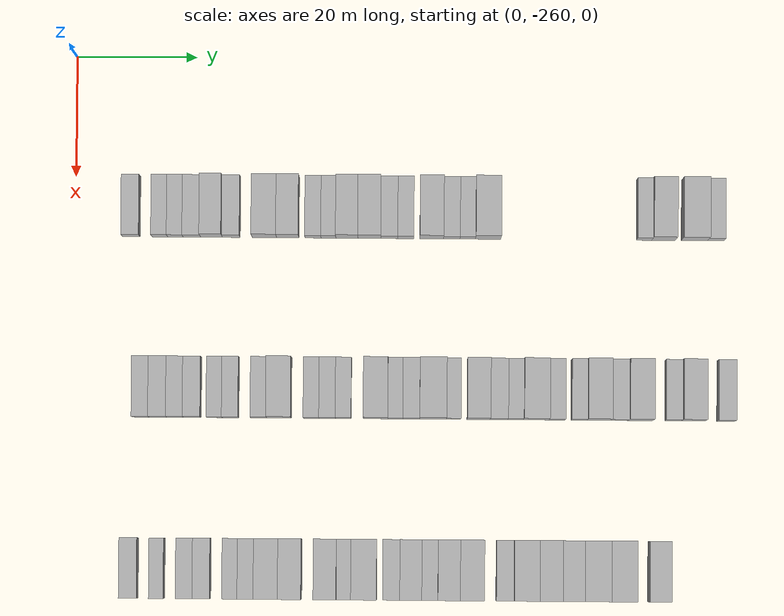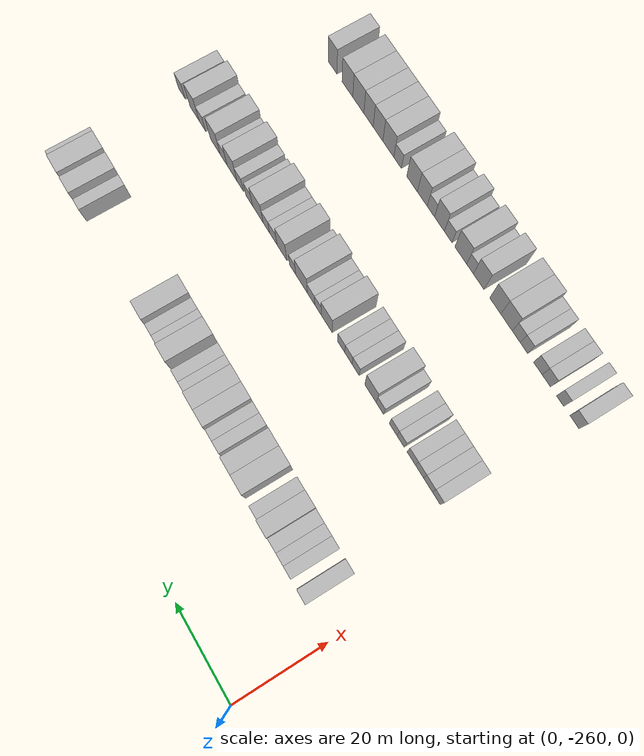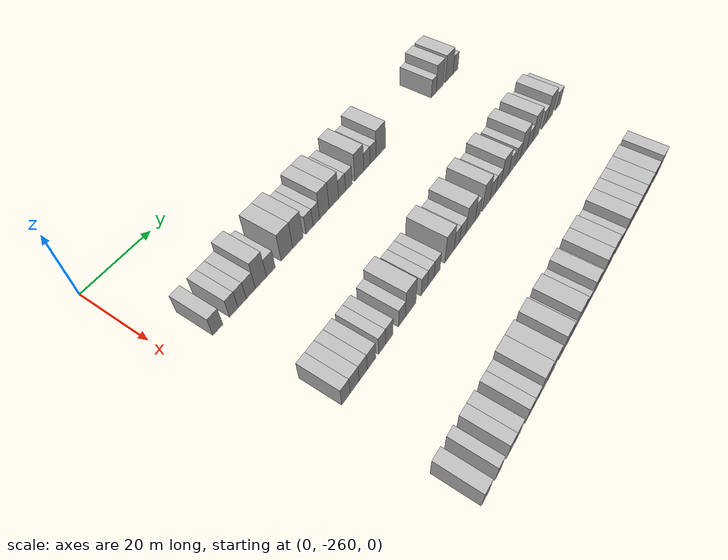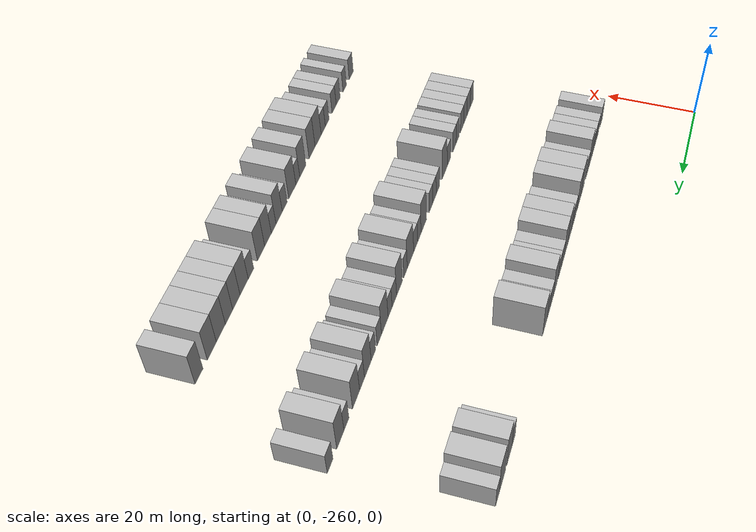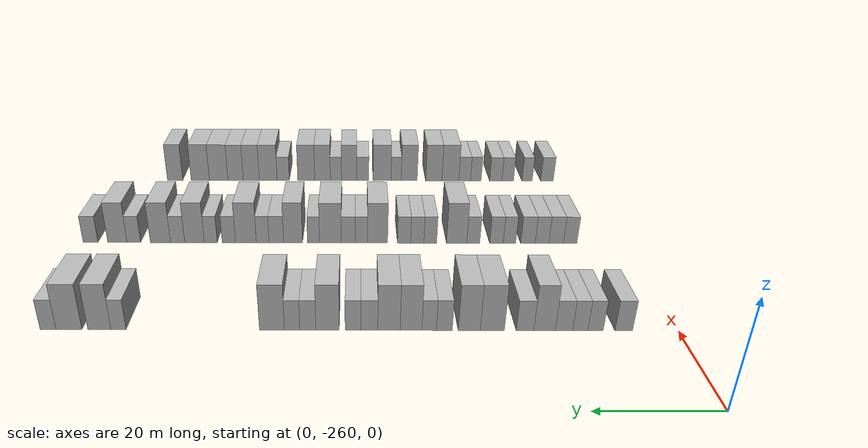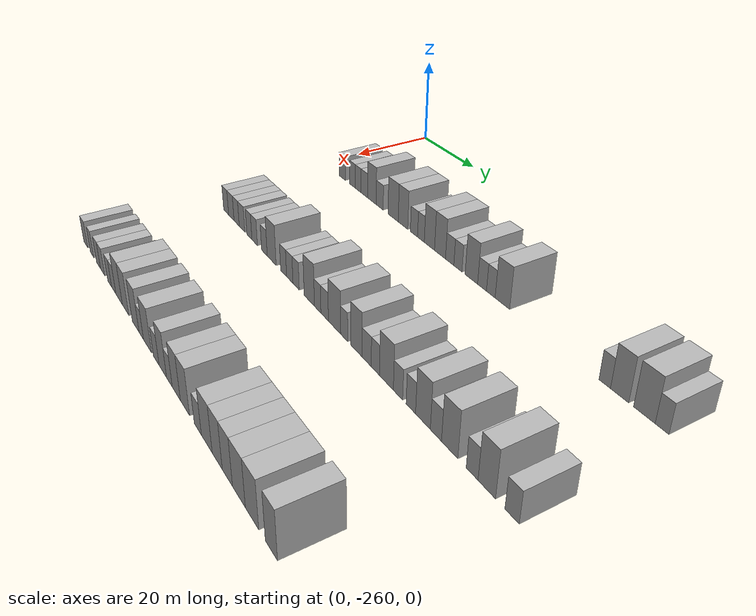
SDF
<sdf version="1.6">
 <world name="default">
  <model name="building_50">
   <static>1</static>
   <pose>25.0000 -250.7479 0 0.000000 0.000000 0.000000</pose>
   <link name="link">
    <pose>0 0 3.00 0 0 0</pose>
    <collision name="collision"><geometry><box><size>10.0000 2.9444 6.0000</size></box></geometry></collision>
    <visual name="visual">
     <cast_shadows>0</cast_shadows>
     <geometry><box><size>10.0000 2.9444 6.0000</size></box></geometry>
     <material>
      <script>
       <uri>model://HANNAS_wall/materials/scripts</uri>
       <uri>model://HANNAS_wall/materials/textures</uri>
       <name>vrc/HANNAS_wall</name>
      </script>
     </material>
    </visual>
   </link>
  </model>
  <model name="building_51">
   <static>1</static>
   <pose>25.0000 -245.9819 0 0.000000 0.000000 0.000000</pose>
   <link name="link">
    <pose>0 0 3.00 0 0 0</pose>
    <collision name="collision"><geometry><box><size>10.0000 2.5876 6.0000</size></box></geometry></collision>
    <visual name="visual">
     <cast_shadows>0</cast_shadows>
     <geometry><box><size>10.0000 2.5876 6.0000</size></box></geometry>
     <material>
      <script>
       <uri>model://HANNAS_wall/materials/scripts</uri>
       <uri>model://HANNAS_wall/materials/textures</uri>
       <name>vrc/HANNAS_wall</name>
      </script>
     </material>
    </visual>
   </link>
  </model>
  <model name="building_52">
   <static>1</static>
   <pose>25.0000 -243.4026 0 0.000000 0.000000 0.000000</pose>
   <link name="link">
    <pose>0 0 3.00 0 0 0</pose>
    <collision name="collision"><geometry><box><size>10.0000 2.5710 6.0000</size></box></geometry></collision>
    <visual name="visual">
     <cast_shadows>0</cast_shadows>
     <geometry><box><size>10.0000 2.5710 6.0000</size></box></geometry>
     <material>
      <script>
       <uri>model://HANNAS_wall/materials/scripts</uri>
       <uri>model://HANNAS_wall/materials/textures</uri>
       <name>vrc/HANNAS_wall</name>
      </script>
     </material>
    </visual>
   </link>
  </model>
  <model name="building_53">
   <static>1</static>
   <pose>25.0000 -240.6543 0 0.000000 0.000000 0.000000</pose>
   <link name="link">
    <pose>0 0 3.00 0 0 0</pose>
    <collision name="collision"><geometry><box><size>10.0000 2.9257 6.0000</size></box></geometry></collision>
    <visual name="visual">
     <cast_shadows>0</cast_shadows>
     <geometry><box><size>10.0000 2.9257 6.0000</size></box></geometry>
     <material>
      <script>
       <uri>model://HANNAS_wall/materials/scripts</uri>
       <uri>model://HANNAS_wall/materials/textures</uri>
       <name>vrc/HANNAS_wall</name>
      </script>
     </material>
    </visual>
   </link>
  </model>
  <model name="building_54">
   <static>1</static>
   <pose>25.0000 -237.3830 0 0.000000 0.000000 0.000000</pose>
   <link name="link">
    <pose>0 0 4.50 0 0 0</pose>
    <collision name="collision"><geometry><box><size>10.0000 3.6170 9.0000</size></box></geometry></collision>
    <visual name="visual">
     <cast_shadows>0</cast_shadows>
     <geometry><box><size>10.0000 3.6170 9.0000</size></box></geometry>
     <material>
      <script>
       <uri>model://HANNAS_wall/materials/scripts</uri>
       <uri>model://HANNAS_wall/materials/textures</uri>
       <name>vrc/HANNAS_wall</name>
      </script>
     </material>
    </visual>
   </link>
  </model>
  <model name="building_55">
   <static>1</static>
   <pose>25.0000 -234.1075 0 0.000000 0.000000 0.000000</pose>
   <link name="link">
    <pose>0 0 3.00 0 0 0</pose>
    <collision name="collision"><geometry><box><size>10.0000 2.9338 6.0000</size></box></geometry></collision>
    <visual name="visual">
     <cast_shadows>0</cast_shadows>
     <geometry><box><size>10.0000 2.9338 6.0000</size></box></geometry>
     <material>
      <script>
       <uri>model://HANNAS_wall/materials/scripts</uri>
       <uri>model://HANNAS_wall/materials/textures</uri>
       <name>vrc/HANNAS_wall</name>
      </script>
     </material>
    </visual>
   </link>
  </model>
  <model name="building_56">
   <static>1</static>
   <pose>25.0000 -228.5994 0 0.000000 0.000000 0.000000</pose>
   <link name="link">
    <pose>0 0 4.50 0 0 0</pose>
    <collision name="collision"><geometry><box><size>10.0000 4.0824 9.0000</size></box></geometry></collision>
    <visual name="visual">
     <cast_shadows>0</cast_shadows>
     <geometry><box><size>10.0000 4.0824 9.0000</size></box></geometry>
     <material>
      <script>
       <uri>model://HANNAS_wall/materials/scripts</uri>
       <uri>model://HANNAS_wall/materials/textures</uri>
       <name>vrc/HANNAS_wall</name>
      </script>
     </material>
    </visual>
   </link>
  </model>
  <model name="building_57">
   <static>1</static>
   <pose>25.0000 -224.7067 0 0.000000 0.000000 0.000000</pose>
   <link name="link">
    <pose>0 0 4.50 0 0 0</pose>
    <collision name="collision"><geometry><box><size>10.0000 3.7029 9.0000</size></box></geometry></collision>
    <visual name="visual">
     <cast_shadows>0</cast_shadows>
     <geometry><box><size>10.0000 3.7029 9.0000</size></box></geometry>
     <material>
      <script>
       <uri>model://HANNAS_wall/materials/scripts</uri>
       <uri>model://HANNAS_wall/materials/textures</uri>
       <name>vrc/HANNAS_wall</name>
      </script>
     </material>
    </visual>
   </link>
  </model>
  <model name="building_58">
   <static>1</static>
   <pose>25.0000 -220.5207 0 0.000000 0.000000 0.000000</pose>
   <link name="link">
    <pose>0 0 3.00 0 0 0</pose>
    <collision name="collision"><geometry><box><size>10.0000 2.6692 6.0000</size></box></geometry></collision>
    <visual name="visual">
     <cast_shadows>0</cast_shadows>
     <geometry><box><size>10.0000 2.6692 6.0000</size></box></geometry>
     <material>
      <script>
       <uri>model://HANNAS_wall/materials/scripts</uri>
       <uri>model://HANNAS_wall/materials/textures</uri>
       <name>vrc/HANNAS_wall</name>
      </script>
     </material>
    </visual>
   </link>
  </model>
  <model name="building_59">
   <static>1</static>
   <pose>25.0000 -217.9531 0 0.000000 0.000000 0.000000</pose>
   <link name="link">
    <pose>0 0 3.00 0 0 0</pose>
    <collision name="collision"><geometry><box><size>10.0000 2.4660 6.0000</size></box></geometry></collision>
    <visual name="visual">
     <cast_shadows>0</cast_shadows>
     <geometry><box><size>10.0000 2.4660 6.0000</size></box></geometry>
     <material>
      <script>
       <uri>model://HANNAS_wall/materials/scripts</uri>
       <uri>model://HANNAS_wall/materials/textures</uri>
       <name>vrc/HANNAS_wall</name>
      </script>
     </material>
    </visual>
   </link>
  </model>
  <model name="building_60">
   <static>1</static>
   <pose>25.0000 -214.8881 0 0.000000 0.000000 0.000000</pose>
   <link name="link">
    <pose>0 0 4.50 0 0 0</pose>
    <collision name="collision"><geometry><box><size>10.0000 3.6640 9.0000</size></box></geometry></collision>
    <visual name="visual">
     <cast_shadows>0</cast_shadows>
     <geometry><box><size>10.0000 3.6640 9.0000</size></box></geometry>
     <material>
      <script>
       <uri>model://HANNAS_wall/materials/scripts</uri>
       <uri>model://HANNAS_wall/materials/textures</uri>
       <name>vrc/HANNAS_wall</name>
      </script>
     </material>
    </visual>
   </link>
  </model>
  <model name="building_61">
   <static>1</static>
   <pose>25.0000 -211.1548 0 0.000000 0.000000 0.000000</pose>
   <link name="link">
    <pose>0 0 4.50 0 0 0</pose>
    <collision name="collision"><geometry><box><size>10.0000 3.8027 9.0000</size></box></geometry></collision>
    <visual name="visual">
     <cast_shadows>0</cast_shadows>
     <geometry><box><size>10.0000 3.8027 9.0000</size></box></geometry>
     <material>
      <script>
       <uri>model://HANNAS_wall/materials/scripts</uri>
       <uri>model://HANNAS_wall/materials/textures</uri>
       <name>vrc/HANNAS_wall</name>
      </script>
     </material>
    </visual>
   </link>
  </model>
  <model name="building_62">
   <static>1</static>
   <pose>25.0000 -207.8550 0 0.000000 0.000000 0.000000</pose>
   <link name="link">
    <pose>0 0 3.00 0 0 0</pose>
    <collision name="collision"><geometry><box><size>10.0000 2.7968 6.0000</size></box></geometry></collision>
    <visual name="visual">
     <cast_shadows>0</cast_shadows>
     <geometry><box><size>10.0000 2.7968 6.0000</size></box></geometry>
     <material>
      <script>
       <uri>model://HANNAS_wall/materials/scripts</uri>
       <uri>model://HANNAS_wall/materials/textures</uri>
       <name>vrc/HANNAS_wall</name>
      </script>
     </material>
    </visual>
   </link>
  </model>
  <model name="building_63">
   <static>1</static>
   <pose>25.0000 -205.1174 0 0.000000 0.000000 0.000000</pose>
   <link name="link">
    <pose>0 0 3.00 0 0 0</pose>
    <collision name="collision"><geometry><box><size>10.0000 2.6784 6.0000</size></box></geometry></collision>
    <visual name="visual">
     <cast_shadows>0</cast_shadows>
     <geometry><box><size>10.0000 2.6784 6.0000</size></box></geometry>
     <material>
      <script>
       <uri>model://HANNAS_wall/materials/scripts</uri>
       <uri>model://HANNAS_wall/materials/textures</uri>
       <name>vrc/HANNAS_wall</name>
      </script>
     </material>
    </visual>
   </link>
  </model>
  <model name="building_64">
   <static>1</static>
   <pose>25.0000 -200.8064 0 0.000000 0.000000 0.000000</pose>
   <link name="link">
    <pose>0 0 4.50 0 0 0</pose>
    <collision name="collision"><geometry><box><size>10.0000 3.9436 9.0000</size></box></geometry></collision>
    <visual name="visual">
     <cast_shadows>0</cast_shadows>
     <geometry><box><size>10.0000 3.9436 9.0000</size></box></geometry>
     <material>
      <script>
       <uri>model://HANNAS_wall/materials/scripts</uri>
       <uri>model://HANNAS_wall/materials/textures</uri>
       <name>vrc/HANNAS_wall</name>
      </script>
     </material>
    </visual>
   </link>
  </model>
  <model name="building_65">
   <static>1</static>
   <pose>25.0000 -197.4739 0 0.000000 0.000000 0.000000</pose>
   <link name="link">
    <pose>0 0 3.00 0 0 0</pose>
    <collision name="collision"><geometry><box><size>10.0000 2.7212 6.0000</size></box></geometry></collision>
    <visual name="visual">
     <cast_shadows>0</cast_shadows>
     <geometry><box><size>10.0000 2.7212 6.0000</size></box></geometry>
     <material>
      <script>
       <uri>model://HANNAS_wall/materials/scripts</uri>
       <uri>model://HANNAS_wall/materials/textures</uri>
       <name>vrc/HANNAS_wall</name>
      </script>
     </material>
    </visual>
   </link>
  </model>
  <model name="building_66">
   <static>1</static>
   <pose>25.0000 -194.8271 0 0.000000 0.000000 0.000000</pose>
   <link name="link">
    <pose>0 0 3.00 0 0 0</pose>
    <collision name="collision"><geometry><box><size>10.0000 2.5724 6.0000</size></box></geometry></collision>
    <visual name="visual">
     <cast_shadows>0</cast_shadows>
     <geometry><box><size>10.0000 2.5724 6.0000</size></box></geometry>
     <material>
      <script>
       <uri>model://HANNAS_wall/materials/scripts</uri>
       <uri>model://HANNAS_wall/materials/textures</uri>
       <name>vrc/HANNAS_wall</name>
      </script>
     </material>
    </visual>
   </link>
  </model>
  <model name="building_67">
   <static>1</static>
   <pose>25.0000 -191.4376 0 0.000000 0.000000 0.000000</pose>
   <link name="link">
    <pose>0 0 4.50 0 0 0</pose>
    <collision name="collision"><geometry><box><size>10.0000 4.2065 9.0000</size></box></geometry></collision>
    <visual name="visual">
     <cast_shadows>0</cast_shadows>
     <geometry><box><size>10.0000 4.2065 9.0000</size></box></geometry>
     <material>
      <script>
       <uri>model://HANNAS_wall/materials/scripts</uri>
       <uri>model://HANNAS_wall/materials/textures</uri>
       <name>vrc/HANNAS_wall</name>
      </script>
     </material>
    </visual>
   </link>
  </model>
  <model name="building_68">
   <static>1</static>
   <pose>25.0000 -165.4969 0 0.000000 0.000000 0.000000</pose>
   <link name="link">
    <pose>0 0 3.00 0 0 0</pose>
    <collision name="collision"><geometry><box><size>10.0000 2.5583 6.0000</size></box></geometry></collision>
    <visual name="visual">
     <cast_shadows>0</cast_shadows>
     <geometry><box><size>10.0000 2.5583 6.0000</size></box></geometry>
     <material>
      <script>
       <uri>model://HANNAS_wall/materials/scripts</uri>
       <uri>model://HANNAS_wall/materials/textures</uri>
       <name>vrc/HANNAS_wall</name>
      </script>
     </material>
    </visual>
   </link>
  </model>
  <model name="building_69">
   <static>1</static>
   <pose>25.0000 -162.2608 0 0.000000 0.000000 0.000000</pose>
   <link name="link">
    <pose>0 0 4.50 0 0 0</pose>
    <collision name="collision"><geometry><box><size>10.0000 3.9138 9.0000</size></box></geometry></collision>
    <visual name="visual">
     <cast_shadows>0</cast_shadows>
     <geometry><box><size>10.0000 3.9138 9.0000</size></box></geometry>
     <material>
      <script>
       <uri>model://HANNAS_wall/materials/scripts</uri>
       <uri>model://HANNAS_wall/materials/textures</uri>
       <name>vrc/HANNAS_wall</name>
      </script>
     </material>
    </visual>
   </link>
  </model>
  <model name="building_70">
   <static>1</static>
   <pose>25.0000 -157.1194 0 0.000000 0.000000 0.000000</pose>
   <link name="link">
    <pose>0 0 4.50 0 0 0</pose>
    <collision name="collision"><geometry><box><size>10.0000 4.3691 9.0000</size></box></geometry></collision>
    <visual name="visual">
     <cast_shadows>0</cast_shadows>
     <geometry><box><size>10.0000 4.3691 9.0000</size></box></geometry>
     <material>
      <script>
       <uri>model://HANNAS_wall/materials/scripts</uri>
       <uri>model://HANNAS_wall/materials/textures</uri>
       <name>vrc/HANNAS_wall</name>
      </script>
     </material>
    </visual>
   </link>
  </model>
  <model name="building_71">
   <static>1</static>
   <pose>25.0000 -153.5848 0 0.000000 0.000000 0.000000</pose>
   <link name="link">
    <pose>0 0 3.00 0 0 0</pose>
    <collision name="collision"><geometry><box><size>10.0000 2.7001 6.0000</size></box></geometry></collision>
    <visual name="visual">
     <cast_shadows>0</cast_shadows>
     <geometry><box><size>10.0000 2.7001 6.0000</size></box></geometry>
     <material>
      <script>
       <uri>model://HANNAS_wall/materials/scripts</uri>
       <uri>model://HANNAS_wall/materials/textures</uri>
       <name>vrc/HANNAS_wall</name>
      </script>
     </material>
    </visual>
   </link>
  </model>
  <model name="building_278">
   <static>1</static>
   <pose>55.0000 -248.8444 0 0.000000 0.000000 0.000000</pose>
   <link name="link">
    <pose>0 0 3.00 0 0 0</pose>
    <collision name="collision"><geometry><box><size>10.0000 2.7266 6.0000</size></box></geometry></collision>
    <visual name="visual">
     <cast_shadows>0</cast_shadows>
     <geometry><box><size>10.0000 2.7266 6.0000</size></box></geometry>
     <material>
      <script>
       <uri>model://HANNAS_wall/materials/scripts</uri>
       <uri>model://HANNAS_wall/materials/textures</uri>
       <name>vrc/HANNAS_wall</name>
      </script>
     </material>
    </visual>
   </link>
  </model>
  <model name="building_279">
   <static>1</static>
   <pose>55.0000 -246.0084 0 0.000000 0.000000 0.000000</pose>
   <link name="link">
    <pose>0 0 3.00 0 0 0</pose>
    <collision name="collision"><geometry><box><size>10.0000 2.9454 6.0000</size></box></geometry></collision>
    <visual name="visual">
     <cast_shadows>0</cast_shadows>
     <geometry><box><size>10.0000 2.9454 6.0000</size></box></geometry>
     <material>
      <script>
       <uri>model://HANNAS_wall/materials/scripts</uri>
       <uri>model://HANNAS_wall/materials/textures</uri>
       <name>vrc/HANNAS_wall</name>
      </script>
     </material>
    </visual>
   </link>
  </model>
  <model name="building_280">
   <static>1</static>
   <pose>55.0000 -243.1601 0 0.000000 0.000000 0.000000</pose>
   <link name="link">
    <pose>0 0 3.00 0 0 0</pose>
    <collision name="collision"><geometry><box><size>10.0000 2.7513 6.0000</size></box></geometry></collision>
    <visual name="visual">
     <cast_shadows>0</cast_shadows>
     <geometry><box><size>10.0000 2.7513 6.0000</size></box></geometry>
     <material>
      <script>
       <uri>model://HANNAS_wall/materials/scripts</uri>
       <uri>model://HANNAS_wall/materials/textures</uri>
       <name>vrc/HANNAS_wall</name>
      </script>
     </material>
    </visual>
   </link>
  </model>
  <model name="building_281">
   <static>1</static>
   <pose>55.0000 -240.3199 0 0.000000 0.000000 0.000000</pose>
   <link name="link">
    <pose>0 0 3.00 0 0 0</pose>
    <collision name="collision"><geometry><box><size>10.0000 2.9290 6.0000</size></box></geometry></collision>
    <visual name="visual">
     <cast_shadows>0</cast_shadows>
     <geometry><box><size>10.0000 2.9290 6.0000</size></box></geometry>
     <material>
      <script>
       <uri>model://HANNAS_wall/materials/scripts</uri>
       <uri>model://HANNAS_wall/materials/textures</uri>
       <name>vrc/HANNAS_wall</name>
      </script>
     </material>
    </visual>
   </link>
  </model>
  <model name="building_282">
   <static>1</static>
   <pose>55.0000 -236.5883 0 0.000000 0.000000 0.000000</pose>
   <link name="link">
    <pose>0 0 3.00 0 0 0</pose>
    <collision name="collision"><geometry><box><size>10.0000 2.5343 6.0000</size></box></geometry></collision>
    <visual name="visual">
     <cast_shadows>0</cast_shadows>
     <geometry><box><size>10.0000 2.5343 6.0000</size></box></geometry>
     <material>
      <script>
       <uri>model://HANNAS_wall/materials/scripts</uri>
       <uri>model://HANNAS_wall/materials/textures</uri>
       <name>vrc/HANNAS_wall</name>
      </script>
     </material>
    </visual>
   </link>
  </model>
  <model name="building_283">
   <static>1</static>
   <pose>55.0000 -233.9597 0 0.000000 0.000000 0.000000</pose>
   <link name="link">
    <pose>0 0 3.00 0 0 0</pose>
    <collision name="collision"><geometry><box><size>10.0000 2.7228 6.0000</size></box></geometry></collision>
    <visual name="visual">
     <cast_shadows>0</cast_shadows>
     <geometry><box><size>10.0000 2.7228 6.0000</size></box></geometry>
     <material>
      <script>
       <uri>model://HANNAS_wall/materials/scripts</uri>
       <uri>model://HANNAS_wall/materials/textures</uri>
       <name>vrc/HANNAS_wall</name>
      </script>
     </material>
    </visual>
   </link>
  </model>
  <model name="building_284">
   <static>1</static>
   <pose>55.0000 -229.2756 0 0.000000 0.000000 0.000000</pose>
   <link name="link">
    <pose>0 0 3.00 0 0 0</pose>
    <collision name="collision"><geometry><box><size>10.0000 2.6452 6.0000</size></box></geometry></collision>
    <visual name="visual">
     <cast_shadows>0</cast_shadows>
     <geometry><box><size>10.0000 2.6452 6.0000</size></box></geometry>
     <material>
      <script>
       <uri>model://HANNAS_wall/materials/scripts</uri>
       <uri>model://HANNAS_wall/materials/textures</uri>
       <name>vrc/HANNAS_wall</name>
      </script>
     </material>
    </visual>
   </link>
  </model>
  <model name="building_285">
   <static>1</static>
   <pose>55.0000 -225.9135 0 0.000000 0.000000 0.000000</pose>
   <link name="link">
    <pose>0 0 4.50 0 0 0</pose>
    <collision name="collision"><geometry><box><size>10.0000 4.0791 9.0000</size></box></geometry></collision>
    <visual name="visual">
     <cast_shadows>0</cast_shadows>
     <geometry><box><size>10.0000 4.0791 9.0000</size></box></geometry>
     <material>
      <script>
       <uri>model://HANNAS_wall/materials/scripts</uri>
       <uri>model://HANNAS_wall/materials/textures</uri>
       <name>vrc/HANNAS_wall</name>
      </script>
     </material>
    </visual>
   </link>
  </model>
  <model name="building_286">
   <static>1</static>
   <pose>55.0000 -220.5771 0 0.000000 0.000000 0.000000</pose>
   <link name="link">
    <pose>0 0 3.00 0 0 0</pose>
    <collision name="collision"><geometry><box><size>10.0000 2.5937 6.0000</size></box></geometry></collision>
    <visual name="visual">
     <cast_shadows>0</cast_shadows>
     <geometry><box><size>10.0000 2.5937 6.0000</size></box></geometry>
     <material>
      <script>
       <uri>model://HANNAS_wall/materials/scripts</uri>
       <uri>model://HANNAS_wall/materials/textures</uri>
       <name>vrc/HANNAS_wall</name>
      </script>
     </material>
    </visual>
   </link>
  </model>
  <model name="building_287">
   <static>1</static>
   <pose>55.0000 -217.9227 0 0.000000 0.000000 0.000000</pose>
   <link name="link">
    <pose>0 0 3.00 0 0 0</pose>
    <collision name="collision"><geometry><box><size>10.0000 2.7151 6.0000</size></box></geometry></collision>
    <visual name="visual">
     <cast_shadows>0</cast_shadows>
     <geometry><box><size>10.0000 2.7151 6.0000</size></box></geometry>
     <material>
      <script>
       <uri>model://HANNAS_wall/materials/scripts</uri>
       <uri>model://HANNAS_wall/materials/textures</uri>
       <name>vrc/HANNAS_wall</name>
      </script>
     </material>
    </visual>
   </link>
  </model>
  <model name="building_288">
   <static>1</static>
   <pose>55.0000 -215.2563 0 0.000000 0.000000 0.000000</pose>
   <link name="link">
    <pose>0 0 3.00 0 0 0</pose>
    <collision name="collision"><geometry><box><size>10.0000 2.6177 6.0000</size></box></geometry></collision>
    <visual name="visual">
     <cast_shadows>0</cast_shadows>
     <geometry><box><size>10.0000 2.6177 6.0000</size></box></geometry>
     <material>
      <script>
       <uri>model://HANNAS_wall/materials/scripts</uri>
       <uri>model://HANNAS_wall/materials/textures</uri>
       <name>vrc/HANNAS_wall</name>
      </script>
     </material>
    </visual>
   </link>
  </model>
  <model name="building_289">
   <static>1</static>
   <pose>55.0000 -209.9128 0 0.000000 0.000000 0.000000</pose>
   <link name="link">
    <pose>0 0 4.50 0 0 0</pose>
    <collision name="collision"><geometry><box><size>10.0000 4.0694 9.0000</size></box></geometry></collision>
    <visual name="visual">
     <cast_shadows>0</cast_shadows>
     <geometry><box><size>10.0000 4.0694 9.0000</size></box></geometry>
     <material>
      <script>
       <uri>model://HANNAS_wall/materials/scripts</uri>
       <uri>model://HANNAS_wall/materials/textures</uri>
       <name>vrc/HANNAS_wall</name>
      </script>
     </material>
    </visual>
   </link>
  </model>
  <model name="building_290">
   <static>1</static>
   <pose>55.0000 -206.6476 0 0.000000 0.000000 0.000000</pose>
   <link name="link">
    <pose>0 0 3.00 0 0 0</pose>
    <collision name="collision"><geometry><box><size>10.0000 2.4610 6.0000</size></box></geometry></collision>
    <visual name="visual">
     <cast_shadows>0</cast_shadows>
     <geometry><box><size>10.0000 2.4610 6.0000</size></box></geometry>
     <material>
      <script>
       <uri>model://HANNAS_wall/materials/scripts</uri>
       <uri>model://HANNAS_wall/materials/textures</uri>
       <name>vrc/HANNAS_wall</name>
      </script>
     </material>
    </visual>
   </link>
  </model>
  <model name="building_291">
   <static>1</static>
   <pose>55.0000 -204.0115 0 0.000000 0.000000 0.000000</pose>
   <link name="link">
    <pose>0 0 3.00 0 0 0</pose>
    <collision name="collision"><geometry><box><size>10.0000 2.8113 6.0000</size></box></geometry></collision>
    <visual name="visual">
     <cast_shadows>0</cast_shadows>
     <geometry><box><size>10.0000 2.8113 6.0000</size></box></geometry>
     <material>
      <script>
       <uri>model://HANNAS_wall/materials/scripts</uri>
       <uri>model://HANNAS_wall/materials/textures</uri>
       <name>vrc/HANNAS_wall</name>
      </script>
     </material>
    </visual>
   </link>
  </model>
  <model name="building_292">
   <static>1</static>
   <pose>55.0000 -200.3840 0 0.000000 0.000000 0.000000</pose>
   <link name="link">
    <pose>0 0 4.50 0 0 0</pose>
    <collision name="collision"><geometry><box><size>10.0000 4.4436 9.0000</size></box></geometry></collision>
    <visual name="visual">
     <cast_shadows>0</cast_shadows>
     <geometry><box><size>10.0000 4.4436 9.0000</size></box></geometry>
     <material>
      <script>
       <uri>model://HANNAS_wall/materials/scripts</uri>
       <uri>model://HANNAS_wall/materials/textures</uri>
       <name>vrc/HANNAS_wall</name>
      </script>
     </material>
    </visual>
   </link>
  </model>
  <model name="building_293">
   <static>1</static>
   <pose>55.0000 -196.9578 0 0.000000 0.000000 0.000000</pose>
   <link name="link">
    <pose>0 0 3.00 0 0 0</pose>
    <collision name="collision"><geometry><box><size>10.0000 2.4088 6.0000</size></box></geometry></collision>
    <visual name="visual">
     <cast_shadows>0</cast_shadows>
     <geometry><box><size>10.0000 2.4088 6.0000</size></box></geometry>
     <material>
      <script>
       <uri>model://HANNAS_wall/materials/scripts</uri>
       <uri>model://HANNAS_wall/materials/textures</uri>
       <name>vrc/HANNAS_wall</name>
      </script>
     </material>
    </visual>
   </link>
  </model>
  <model name="building_294">
   <static>1</static>
   <pose>55.0000 -192.8395 0 0.000000 0.000000 0.000000</pose>
   <link name="link">
    <pose>0 0 4.50 0 0 0</pose>
    <collision name="collision"><geometry><box><size>10.0000 3.8278 9.0000</size></box></geometry></collision>
    <visual name="visual">
     <cast_shadows>0</cast_shadows>
     <geometry><box><size>10.0000 3.8278 9.0000</size></box></geometry>
     <material>
      <script>
       <uri>model://HANNAS_wall/materials/scripts</uri>
       <uri>model://HANNAS_wall/materials/textures</uri>
       <name>vrc/HANNAS_wall</name>
      </script>
     </material>
    </visual>
   </link>
  </model>
  <model name="building_295">
   <static>1</static>
   <pose>55.0000 -189.4473 0 0.000000 0.000000 0.000000</pose>
   <link name="link">
    <pose>0 0 3.00 0 0 0</pose>
    <collision name="collision"><geometry><box><size>10.0000 2.9566 6.0000</size></box></geometry></collision>
    <visual name="visual">
     <cast_shadows>0</cast_shadows>
     <geometry><box><size>10.0000 2.9566 6.0000</size></box></geometry>
     <material>
      <script>
       <uri>model://HANNAS_wall/materials/scripts</uri>
       <uri>model://HANNAS_wall/materials/textures</uri>
       <name>vrc/HANNAS_wall</name>
      </script>
     </material>
    </visual>
   </link>
  </model>
  <model name="building_296">
   <static>1</static>
   <pose>55.0000 -186.6783 0 0.000000 0.000000 0.000000</pose>
   <link name="link">
    <pose>0 0 3.00 0 0 0</pose>
    <collision name="collision"><geometry><box><size>10.0000 2.5814 6.0000</size></box></geometry></collision>
    <visual name="visual">
     <cast_shadows>0</cast_shadows>
     <geometry><box><size>10.0000 2.5814 6.0000</size></box></geometry>
     <material>
      <script>
       <uri>model://HANNAS_wall/materials/scripts</uri>
       <uri>model://HANNAS_wall/materials/textures</uri>
       <name>vrc/HANNAS_wall</name>
      </script>
     </material>
    </visual>
   </link>
  </model>
  <model name="building_297">
   <static>1</static>
   <pose>55.0000 -183.2816 0 0.000000 0.000000 0.000000</pose>
   <link name="link">
    <pose>0 0 4.50 0 0 0</pose>
    <collision name="collision"><geometry><box><size>10.0000 4.2121 9.0000</size></box></geometry></collision>
    <visual name="visual">
     <cast_shadows>0</cast_shadows>
     <geometry><box><size>10.0000 4.2121 9.0000</size></box></geometry>
     <material>
      <script>
       <uri>model://HANNAS_wall/materials/scripts</uri>
       <uri>model://HANNAS_wall/materials/textures</uri>
       <name>vrc/HANNAS_wall</name>
      </script>
     </material>
    </visual>
   </link>
  </model>
  <model name="building_298">
   <static>1</static>
   <pose>55.0000 -179.8329 0 0.000000 0.000000 0.000000</pose>
   <link name="link">
    <pose>0 0 3.00 0 0 0</pose>
    <collision name="collision"><geometry><box><size>10.0000 2.6853 6.0000</size></box></geometry></collision>
    <visual name="visual">
     <cast_shadows>0</cast_shadows>
     <geometry><box><size>10.0000 2.6853 6.0000</size></box></geometry>
     <material>
      <script>
       <uri>model://HANNAS_wall/materials/scripts</uri>
       <uri>model://HANNAS_wall/materials/textures</uri>
       <name>vrc/HANNAS_wall</name>
      </script>
     </material>
    </visual>
   </link>
  </model>
  <model name="building_299">
   <static>1</static>
   <pose>55.0000 -176.1745 0 0.000000 0.000000 0.000000</pose>
   <link name="link">
    <pose>0 0 3.00 0 0 0</pose>
    <collision name="collision"><geometry><box><size>10.0000 2.6313 6.0000</size></box></geometry></collision>
    <visual name="visual">
     <cast_shadows>0</cast_shadows>
     <geometry><box><size>10.0000 2.6313 6.0000</size></box></geometry>
     <material>
      <script>
       <uri>model://HANNAS_wall/materials/scripts</uri>
       <uri>model://HANNAS_wall/materials/textures</uri>
       <name>vrc/HANNAS_wall</name>
      </script>
     </material>
    </visual>
   </link>
  </model>
  <model name="building_300">
   <static>1</static>
   <pose>55.0000 -172.8747 0 0.000000 0.000000 0.000000</pose>
   <link name="link">
    <pose>0 0 4.50 0 0 0</pose>
    <collision name="collision"><geometry><box><size>10.0000 3.9683 9.0000</size></box></geometry></collision>
    <visual name="visual">
     <cast_shadows>0</cast_shadows>
     <geometry><box><size>10.0000 3.9683 9.0000</size></box></geometry>
     <material>
      <script>
       <uri>model://HANNAS_wall/materials/scripts</uri>
       <uri>model://HANNAS_wall/materials/textures</uri>
       <name>vrc/HANNAS_wall</name>
      </script>
     </material>
    </visual>
   </link>
  </model>
  <model name="building_301">
   <static>1</static>
   <pose>55.0000 -169.4454 0 0.000000 0.000000 0.000000</pose>
   <link name="link">
    <pose>0 0 3.00 0 0 0</pose>
    <collision name="collision"><geometry><box><size>10.0000 2.8903 6.0000</size></box></geometry></collision>
    <visual name="visual">
     <cast_shadows>0</cast_shadows>
     <geometry><box><size>10.0000 2.8903 6.0000</size></box></geometry>
     <material>
      <script>
       <uri>model://HANNAS_wall/materials/scripts</uri>
       <uri>model://HANNAS_wall/materials/textures</uri>
       <name>vrc/HANNAS_wall</name>
      </script>
     </material>
    </visual>
   </link>
  </model>
  <model name="building_302">
   <static>1</static>
   <pose>55.0000 -165.9728 0 0.000000 0.000000 0.000000</pose>
   <link name="link">
    <pose>0 0 4.50 0 0 0</pose>
    <collision name="collision"><geometry><box><size>10.0000 4.0549 9.0000</size></box></geometry></collision>
    <visual name="visual">
     <cast_shadows>0</cast_shadows>
     <geometry><box><size>10.0000 4.0549 9.0000</size></box></geometry>
     <material>
      <script>
       <uri>model://HANNAS_wall/materials/scripts</uri>
       <uri>model://HANNAS_wall/materials/textures</uri>
       <name>vrc/HANNAS_wall</name>
      </script>
     </material>
    </visual>
   </link>
  </model>
  <model name="building_303">
   <static>1</static>
   <pose>55.0000 -160.5729 0 0.000000 0.000000 0.000000</pose>
   <link name="link">
    <pose>0 0 3.00 0 0 0</pose>
    <collision name="collision"><geometry><box><size>10.0000 2.7450 6.0000</size></box></geometry></collision>
    <visual name="visual">
     <cast_shadows>0</cast_shadows>
     <geometry><box><size>10.0000 2.7450 6.0000</size></box></geometry>
     <material>
      <script>
       <uri>model://HANNAS_wall/materials/scripts</uri>
       <uri>model://HANNAS_wall/materials/textures</uri>
       <name>vrc/HANNAS_wall</name>
      </script>
     </material>
    </visual>
   </link>
  </model>
  <model name="building_304">
   <static>1</static>
   <pose>55.0000 -157.2490 0 0.000000 0.000000 0.000000</pose>
   <link name="link">
    <pose>0 0 4.50 0 0 0</pose>
    <collision name="collision"><geometry><box><size>10.0000 3.9028 9.0000</size></box></geometry></collision>
    <visual name="visual">
     <cast_shadows>0</cast_shadows>
     <geometry><box><size>10.0000 3.9028 9.0000</size></box></geometry>
     <material>
      <script>
       <uri>model://HANNAS_wall/materials/scripts</uri>
       <uri>model://HANNAS_wall/materials/textures</uri>
       <name>vrc/HANNAS_wall</name>
      </script>
     </material>
    </visual>
   </link>
  </model>
  <model name="building_305">
   <static>1</static>
   <pose>55.0000 -151.8024 0 0.000000 0.000000 0.000000</pose>
   <link name="link">
    <pose>0 0 3.00 0 0 0</pose>
    <collision name="collision"><geometry><box><size>10.0000 2.9903 6.0000</size></box></geometry></collision>
    <visual name="visual">
     <cast_shadows>0</cast_shadows>
     <geometry><box><size>10.0000 2.9903 6.0000</size></box></geometry>
     <material>
      <script>
       <uri>model://HANNAS_wall/materials/scripts</uri>
       <uri>model://HANNAS_wall/materials/textures</uri>
       <name>vrc/HANNAS_wall</name>
      </script>
     </material>
    </visual>
   </link>
  </model>
  <model name="building_508">
   <static>1</static>
   <pose>85.0000 -250.5221 0 0.000000 0.000000 0.000000</pose>
   <link name="link">
    <pose>0 0 3.00 0 0 0</pose>
    <collision name="collision"><geometry><box><size>10.0000 2.9543 6.0000</size></box></geometry></collision>
    <visual name="visual">
     <cast_shadows>0</cast_shadows>
     <geometry><box><size>10.0000 2.9543 6.0000</size></box></geometry>
     <material>
      <script>
       <uri>model://HANNAS_wall/materials/scripts</uri>
       <uri>model://HANNAS_wall/materials/textures</uri>
       <name>vrc/HANNAS_wall</name>
      </script>
     </material>
    </visual>
   </link>
  </model>
  <model name="building_509">
   <static>1</static>
   <pose>85.0000 -245.8423 0 0.000000 0.000000 0.000000</pose>
   <link name="link">
    <pose>0 0 3.00 0 0 0</pose>
    <collision name="collision"><geometry><box><size>10.0000 2.4054 6.0000</size></box></geometry></collision>
    <visual name="visual">
     <cast_shadows>0</cast_shadows>
     <geometry><box><size>10.0000 2.4054 6.0000</size></box></geometry>
     <material>
      <script>
       <uri>model://HANNAS_wall/materials/scripts</uri>
       <uri>model://HANNAS_wall/materials/textures</uri>
       <name>vrc/HANNAS_wall</name>
      </script>
     </material>
    </visual>
   </link>
  </model>
  <model name="building_510">
   <static>1</static>
   <pose>85.0000 -241.2646 0 0.000000 0.000000 0.000000</pose>
   <link name="link">
    <pose>0 0 3.00 0 0 0</pose>
    <collision name="collision"><geometry><box><size>10.0000 2.7500 6.0000</size></box></geometry></collision>
    <visual name="visual">
     <cast_shadows>0</cast_shadows>
     <geometry><box><size>10.0000 2.7500 6.0000</size></box></geometry>
     <material>
      <script>
       <uri>model://HANNAS_wall/materials/scripts</uri>
       <uri>model://HANNAS_wall/materials/textures</uri>
       <name>vrc/HANNAS_wall</name>
      </script>
     </material>
    </visual>
   </link>
  </model>
  <model name="building_511">
   <static>1</static>
   <pose>85.0000 -238.4506 0 0.000000 0.000000 0.000000</pose>
   <link name="link">
    <pose>0 0 3.00 0 0 0</pose>
    <collision name="collision"><geometry><box><size>10.0000 2.8780 6.0000</size></box></geometry></collision>
    <visual name="visual">
     <cast_shadows>0</cast_shadows>
     <geometry><box><size>10.0000 2.8780 6.0000</size></box></geometry>
     <material>
      <script>
       <uri>model://HANNAS_wall/materials/scripts</uri>
       <uri>model://HANNAS_wall/materials/textures</uri>
       <name>vrc/HANNAS_wall</name>
      </script>
     </material>
    </visual>
   </link>
  </model>
  <model name="building_512">
   <static>1</static>
   <pose>85.0000 -233.7528 0 0.000000 0.000000 0.000000</pose>
   <link name="link">
    <pose>0 0 3.00 0 0 0</pose>
    <collision name="collision"><geometry><box><size>10.0000 2.5176 6.0000</size></box></geometry></collision>
    <visual name="visual">
     <cast_shadows>0</cast_shadows>
     <geometry><box><size>10.0000 2.5176 6.0000</size></box></geometry>
     <material>
      <script>
       <uri>model://HANNAS_wall/materials/scripts</uri>
       <uri>model://HANNAS_wall/materials/textures</uri>
       <name>vrc/HANNAS_wall</name>
      </script>
     </material>
    </visual>
   </link>
  </model>
  <model name="building_513">
   <static>1</static>
   <pose>85.0000 -231.1223 0 0.000000 0.000000 0.000000</pose>
   <link name="link">
    <pose>0 0 3.00 0 0 0</pose>
    <collision name="collision"><geometry><box><size>10.0000 2.7435 6.0000</size></box></geometry></collision>
    <visual name="visual">
     <cast_shadows>0</cast_shadows>
     <geometry><box><size>10.0000 2.7435 6.0000</size></box></geometry>
     <material>
      <script>
       <uri>model://HANNAS_wall/materials/scripts</uri>
       <uri>model://HANNAS_wall/materials/textures</uri>
       <name>vrc/HANNAS_wall</name>
      </script>
     </material>
    </visual>
   </link>
  </model>
  <model name="building_514">
   <static>1</static>
   <pose>85.0000 -227.7607 0 0.000000 0.000000 0.000000</pose>
   <link name="link">
    <pose>0 0 4.50 0 0 0</pose>
    <collision name="collision"><geometry><box><size>10.0000 3.9798 9.0000</size></box></geometry></collision>
    <visual name="visual">
     <cast_shadows>0</cast_shadows>
     <geometry><box><size>10.0000 3.9798 9.0000</size></box></geometry>
     <material>
      <script>
       <uri>model://HANNAS_wall/materials/scripts</uri>
       <uri>model://HANNAS_wall/materials/textures</uri>
       <name>vrc/HANNAS_wall</name>
      </script>
     </material>
    </visual>
   </link>
  </model>
  <model name="building_515">
   <static>1</static>
   <pose>85.0000 -223.8538 0 0.000000 0.000000 0.000000</pose>
   <link name="link">
    <pose>0 0 4.50 0 0 0</pose>
    <collision name="collision"><geometry><box><size>10.0000 3.8340 9.0000</size></box></geometry></collision>
    <visual name="visual">
     <cast_shadows>0</cast_shadows>
     <geometry><box><size>10.0000 3.8340 9.0000</size></box></geometry>
     <material>
      <script>
       <uri>model://HANNAS_wall/materials/scripts</uri>
       <uri>model://HANNAS_wall/materials/textures</uri>
       <name>vrc/HANNAS_wall</name>
      </script>
     </material>
    </visual>
   </link>
  </model>
  <model name="building_516">
   <static>1</static>
   <pose>85.0000 -218.0531 0 0.000000 0.000000 0.000000</pose>
   <link name="link">
    <pose>0 0 4.50 0 0 0</pose>
    <collision name="collision"><geometry><box><size>10.0000 3.7673 9.0000</size></box></geometry></collision>
    <visual name="visual">
     <cast_shadows>0</cast_shadows>
     <geometry><box><size>10.0000 3.7673 9.0000</size></box></geometry>
     <material>
      <script>
       <uri>model://HANNAS_wall/materials/scripts</uri>
       <uri>model://HANNAS_wall/materials/textures</uri>
       <name>vrc/HANNAS_wall</name>
      </script>
     </material>
    </visual>
   </link>
  </model>
  <model name="building_517">
   <static>1</static>
   <pose>85.0000 -214.9662 0 0.000000 0.000000 0.000000</pose>
   <link name="link">
    <pose>0 0 3.00 0 0 0</pose>
    <collision name="collision"><geometry><box><size>10.0000 2.4067 6.0000</size></box></geometry></collision>
    <visual name="visual">
     <cast_shadows>0</cast_shadows>
     <geometry><box><size>10.0000 2.4067 6.0000</size></box></geometry>
     <material>
      <script>
       <uri>model://HANNAS_wall/materials/scripts</uri>
       <uri>model://HANNAS_wall/materials/textures</uri>
       <name>vrc/HANNAS_wall</name>
      </script>
     </material>
    </visual>
   </link>
  </model>
  <model name="building_518">
   <static>1</static>
   <pose>85.0000 -211.6481 0 0.000000 0.000000 0.000000</pose>
   <link name="link">
    <pose>0 0 4.50 0 0 0</pose>
    <collision name="collision"><geometry><box><size>10.0000 4.2295 9.0000</size></box></geometry></collision>
    <visual name="visual">
     <cast_shadows>0</cast_shadows>
     <geometry><box><size>10.0000 4.2295 9.0000</size></box></geometry>
     <material>
      <script>
       <uri>model://HANNAS_wall/materials/scripts</uri>
       <uri>model://HANNAS_wall/materials/textures</uri>
       <name>vrc/HANNAS_wall</name>
      </script>
     </material>
    </visual>
   </link>
  </model>
  <model name="building_519">
   <static>1</static>
   <pose>85.0000 -207.1218 0 0.000000 0.000000 0.000000</pose>
   <link name="link">
    <pose>0 0 3.00 0 0 0</pose>
    <collision name="collision"><geometry><box><size>10.0000 2.8231 6.0000</size></box></geometry></collision>
    <visual name="visual">
     <cast_shadows>0</cast_shadows>
     <geometry><box><size>10.0000 2.8231 6.0000</size></box></geometry>
     <material>
      <script>
       <uri>model://HANNAS_wall/materials/scripts</uri>
       <uri>model://HANNAS_wall/materials/textures</uri>
       <name>vrc/HANNAS_wall</name>
      </script>
     </material>
    </visual>
   </link>
  </model>
  <model name="building_520">
   <static>1</static>
   <pose>85.0000 -203.9026 0 0.000000 0.000000 0.000000</pose>
   <link name="link">
    <pose>0 0 4.50 0 0 0</pose>
    <collision name="collision"><geometry><box><size>10.0000 3.6152 9.0000</size></box></geometry></collision>
    <visual name="visual">
     <cast_shadows>0</cast_shadows>
     <geometry><box><size>10.0000 3.6152 9.0000</size></box></geometry>
     <material>
      <script>
       <uri>model://HANNAS_wall/materials/scripts</uri>
       <uri>model://HANNAS_wall/materials/textures</uri>
       <name>vrc/HANNAS_wall</name>
      </script>
     </material>
    </visual>
   </link>
  </model>
  <model name="building_521">
   <static>1</static>
   <pose>85.0000 -200.7630 0 0.000000 0.000000 0.000000</pose>
   <link name="link">
    <pose>0 0 3.00 0 0 0</pose>
    <collision name="collision"><geometry><box><size>10.0000 2.6641 6.0000</size></box></geometry></collision>
    <visual name="visual">
     <cast_shadows>0</cast_shadows>
     <geometry><box><size>10.0000 2.6641 6.0000</size></box></geometry>
     <material>
      <script>
       <uri>model://HANNAS_wall/materials/scripts</uri>
       <uri>model://HANNAS_wall/materials/textures</uri>
       <name>vrc/HANNAS_wall</name>
      </script>
     </material>
    </visual>
   </link>
  </model>
  <model name="building_522">
   <static>1</static>
   <pose>85.0000 -197.5969 0 0.000000 0.000000 0.000000</pose>
   <link name="link">
    <pose>0 0 4.50 0 0 0</pose>
    <collision name="collision"><geometry><box><size>10.0000 3.6681 9.0000</size></box></geometry></collision>
    <visual name="visual">
     <cast_shadows>0</cast_shadows>
     <geometry><box><size>10.0000 3.6681 9.0000</size></box></geometry>
     <material>
      <script>
       <uri>model://HANNAS_wall/materials/scripts</uri>
       <uri>model://HANNAS_wall/materials/textures</uri>
       <name>vrc/HANNAS_wall</name>
      </script>
     </material>
    </visual>
   </link>
  </model>
  <model name="building_523">
   <static>1</static>
   <pose>85.0000 -193.7722 0 0.000000 0.000000 0.000000</pose>
   <link name="link">
    <pose>0 0 4.50 0 0 0</pose>
    <collision name="collision"><geometry><box><size>10.0000 3.9813 9.0000</size></box></geometry></collision>
    <visual name="visual">
     <cast_shadows>0</cast_shadows>
     <geometry><box><size>10.0000 3.9813 9.0000</size></box></geometry>
     <material>
      <script>
       <uri>model://HANNAS_wall/materials/scripts</uri>
       <uri>model://HANNAS_wall/materials/textures</uri>
       <name>vrc/HANNAS_wall</name>
      </script>
     </material>
    </visual>
   </link>
  </model>
  <model name="building_524">
   <static>1</static>
   <pose>85.0000 -188.3345 0 0.000000 0.000000 0.000000</pose>
   <link name="link">
    <pose>0 0 3.00 0 0 0</pose>
    <collision name="collision"><geometry><box><size>10.0000 2.8941 6.0000</size></box></geometry></collision>
    <visual name="visual">
     <cast_shadows>0</cast_shadows>
     <geometry><box><size>10.0000 2.8941 6.0000</size></box></geometry>
     <material>
      <script>
       <uri>model://HANNAS_wall/materials/scripts</uri>
       <uri>model://HANNAS_wall/materials/textures</uri>
       <name>vrc/HANNAS_wall</name>
      </script>
     </material>
    </visual>
   </link>
  </model>
  <model name="building_525">
   <static>1</static>
   <pose>85.0000 -184.7837 0 0.000000 0.000000 0.000000</pose>
   <link name="link">
    <pose>0 0 4.50 0 0 0</pose>
    <collision name="collision"><geometry><box><size>10.0000 4.2075 9.0000</size></box></geometry></collision>
    <visual name="visual">
     <cast_shadows>0</cast_shadows>
     <geometry><box><size>10.0000 4.2075 9.0000</size></box></geometry>
     <material>
      <script>
       <uri>model://HANNAS_wall/materials/scripts</uri>
       <uri>model://HANNAS_wall/materials/textures</uri>
       <name>vrc/HANNAS_wall</name>
      </script>
     </material>
    </visual>
   </link>
  </model>
  <model name="building_526">
   <static>1</static>
   <pose>85.0000 -180.7996 0 0.000000 0.000000 0.000000</pose>
   <link name="link">
    <pose>0 0 4.50 0 0 0</pose>
    <collision name="collision"><geometry><box><size>10.0000 3.7609 9.0000</size></box></geometry></collision>
    <visual name="visual">
     <cast_shadows>0</cast_shadows>
     <geometry><box><size>10.0000 3.7609 9.0000</size></box></geometry>
     <material>
      <script>
       <uri>model://HANNAS_wall/materials/scripts</uri>
       <uri>model://HANNAS_wall/materials/textures</uri>
       <name>vrc/HANNAS_wall</name>
      </script>
     </material>
    </visual>
   </link>
  </model>
  <model name="building_527">
   <static>1</static>
   <pose>85.0000 -177.1018 0 0.000000 0.000000 0.000000</pose>
   <link name="link">
    <pose>0 0 4.50 0 0 0</pose>
    <collision name="collision"><geometry><box><size>10.0000 3.6346 9.0000</size></box></geometry></collision>
    <visual name="visual">
     <cast_shadows>0</cast_shadows>
     <geometry><box><size>10.0000 3.6346 9.0000</size></box></geometry>
     <material>
      <script>
       <uri>model://HANNAS_wall/materials/scripts</uri>
       <uri>model://HANNAS_wall/materials/textures</uri>
       <name>vrc/HANNAS_wall</name>
      </script>
     </material>
    </visual>
   </link>
  </model>
  <model name="building_528">
   <static>1</static>
   <pose>85.0000 -173.1041 0 0.000000 0.000000 0.000000</pose>
   <link name="link">
    <pose>0 0 4.50 0 0 0</pose>
    <collision name="collision"><geometry><box><size>10.0000 4.3609 9.0000</size></box></geometry></collision>
    <visual name="visual">
     <cast_shadows>0</cast_shadows>
     <geometry><box><size>10.0000 4.3609 9.0000</size></box></geometry>
     <material>
      <script>
       <uri>model://HANNAS_wall/materials/scripts</uri>
       <uri>model://HANNAS_wall/materials/textures</uri>
       <name>vrc/HANNAS_wall</name>
      </script>
     </material>
    </visual>
   </link>
  </model>
  <model name="building_529">
   <static>1</static>
   <pose>85.0000 -168.7789 0 0.000000 0.000000 0.000000</pose>
   <link name="link">
    <pose>0 0 4.50 0 0 0</pose>
    <collision name="collision"><geometry><box><size>10.0000 4.2895 9.0000</size></box></geometry></collision>
    <visual name="visual">
     <cast_shadows>0</cast_shadows>
     <geometry><box><size>10.0000 4.2895 9.0000</size></box></geometry>
     <material>
      <script>
       <uri>model://HANNAS_wall/materials/scripts</uri>
       <uri>model://HANNAS_wall/materials/textures</uri>
       <name>vrc/HANNAS_wall</name>
      </script>
     </material>
    </visual>
   </link>
  </model>
  <model name="building_530">
   <static>1</static>
   <pose>85.0000 -162.8322 0 0.000000 0.000000 0.000000</pose>
   <link name="link">
    <pose>0 0 4.50 0 0 0</pose>
    <collision name="collision"><geometry><box><size>10.0000 3.6038 9.0000</size></box></geometry></collision>
    <visual name="visual">
     <cast_shadows>0</cast_shadows>
     <geometry><box><size>10.0000 3.6038 9.0000</size></box></geometry>
     <material>
      <script>
       <uri>model://HANNAS_wall/materials/scripts</uri>
       <uri>model://HANNAS_wall/materials/textures</uri>
       <name>vrc/HANNAS_wall</name>
      </script>
     </material>
    </visual>
   </link>
  </model>
 </world>
</sdf>
